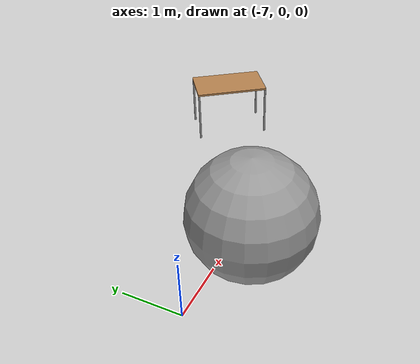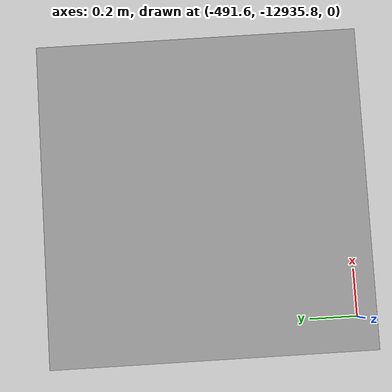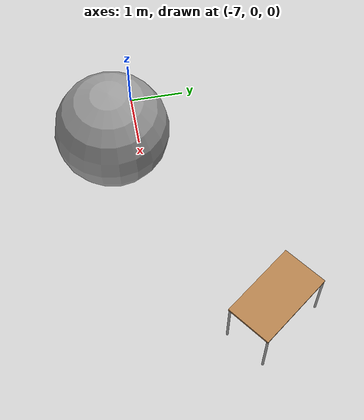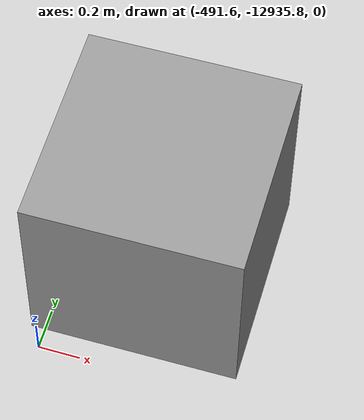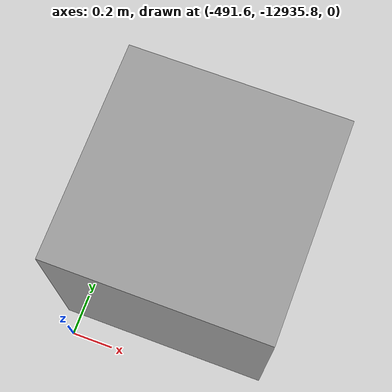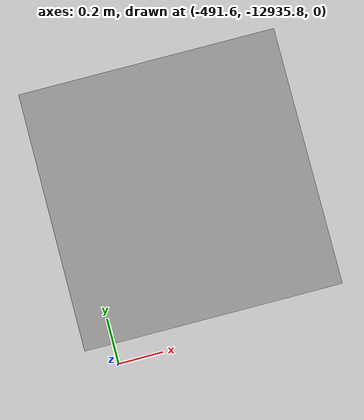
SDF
<sdf version="1.6">
 <world name="default">
  <light name="sun" type="directional">
   <pose>0 0 10 0 -0 0</pose>
   <diffuse>0.8 0.8 0.8 1</diffuse>
   <specular>0.1 0.1 0.1 1</specular>
   <attenuation>
    <range>1000</range>
    <constant>0.9</constant>
    <linear>0.01</linear>
    <quadratic>0.001</quadratic>
   </attenuation>
   <direction>-0.5 0.5 -1</direction>
  </light>
  <model name="ground_plane">
   <static>1</static>
   <link name="link">
    <collision name="collision">
     <geometry><plane><normal>0 0 1</normal><size>100 100</size></plane></geometry>
     <surface><friction><ode><mu>100</mu><mu2>50</mu2></ode></friction></surface>
    </collision>
    <visual name="visual">
     <cast_shadows>0</cast_shadows>
     <geometry><plane><normal>0 0 1</normal><size>100 100</size></plane></geometry>
     <material>
      <script><uri>file://media/materials/scripts/gazebo.material</uri><name>Gazebo/Grey</name></script>
     </material>
    </visual>
   </link>
  </model>
  <gravity>0 0 -9.8</gravity>
  <magnetic_field>6e-06 2.3e-05 -4.2e-05</magnetic_field>
  <atmosphere type="adiabatic"/>
  <physics name="default_physics" default="0" type="ode">
   <max_step_size>0.001</max_step_size>
   <real_time_factor>1</real_time_factor>
   <real_time_update_rate>1000</real_time_update_rate>
  </physics>
  <scene><ambient>0.4 0.4 0.4 1</ambient><background>0.7 0.7 0.7 1</background><shadows>1</shadows></scene>
  <spherical_coordinates>
   <surface_model>EARTH_WGS84</surface_model>
   <latitude_deg>0</latitude_deg>
   <longitude_deg>0</longitude_deg>
   <elevation>0</elevation>
   <heading_deg>0</heading_deg>
  </spherical_coordinates>
  <model name="unit_sphere_0">
   <pose>-5.66738 -0.478237 1.0067 0 -0 0</pose>
   <link name="link">
    <inertial>
     <mass>1</mass>
     <inertia><ixx>0.1</ixx><ixy>0</ixy><ixz>0</ixz><iyy>0.1</iyy><iyz>0</iyz><izz>0.1</izz></inertia>
    </inertial>
    <collision name="collision"><geometry><sphere><radius>1.0067</radius></sphere></geometry></collision>
    <visual name="visual">
     <geometry><sphere><radius>1.0067</radius></sphere></geometry>
     <material>
      <script><name>Gazebo/Grey</name><uri>file://media/materials/scripts/gazebo.material</uri></script>
     </material>
    </visual>
   </link>
  </model>
  <model name="unit_box_0">
   <pose>-491.168 -12935.2 0.499995 0 -1e-05 0</pose>
   <link name="link">
    <inertial>
     <mass>1</mass>
     <inertia>
      <ixx>0.166667</ixx>
      <ixy>0</ixy>
      <ixz>0</ixz>
      <iyy>0.166667</iyy>
      <iyz>0</iyz>
      <izz>0.166667</izz>
     </inertia>
    </inertial>
    <collision name="collision"><geometry><box><size>1 1 1</size></box></geometry></collision>
    <visual name="visual">
     <geometry><box><size>1 1 1</size></box></geometry>
     <material>
      <script><name>Gazebo/Grey</name><uri>file://media/materials/scripts/gazebo.material</uri></script>
     </material>
    </visual>
   </link>
  </model>
  <model name="table">
   <static>0</static>
   <link name="link">
    <collision name="surface">
     <pose>0 0 1 0 -0 0</pose>
     <geometry><box><size>1.5 0.8 0.03</size></box></geometry>
     <surface><friction><ode><mu>0.6</mu><mu2>0.6</mu2></ode></friction></surface>
    </collision>
    <visual name="visual1">
     <pose>0 0 1 0 -0 0</pose>
     <geometry><box><size>1.4 0.8 0.04</size></box></geometry>
     <material>
      <script><uri>file://media/materials/scripts/gazebo.material</uri><name>Gazebo/Wood</name></script>
     </material>
    </visual>
    <collision name="front_left_leg">
     <pose>0.68 0.38 0.5 0 -0 0</pose>
     <geometry><cylinder><radius>0.02</radius><length>1</length></cylinder></geometry>
    </collision>
    <visual name="front_left_leg">
     <pose>0.68 0.38 0.5 0 -0 0</pose>
     <geometry><cylinder><radius>0.02</radius><length>1</length></cylinder></geometry>
     <material>
      <script><uri>file://media/materials/scripts/gazebo.material</uri><name>Gazebo/Grey</name></script>
     </material>
    </visual>
    <collision name="front_right_leg">
     <pose>0.68 -0.38 0.5 0 -0 0</pose>
     <geometry><cylinder><radius>0.02</radius><length>1</length></cylinder></geometry>
    </collision>
    <visual name="front_right_leg">
     <pose>0.68 -0.38 0.5 0 -0 0</pose>
     <geometry><cylinder><radius>0.02</radius><length>1</length></cylinder></geometry>
     <material>
      <script><uri>file://media/materials/scripts/gazebo.material</uri><name>Gazebo/Grey</name></script>
     </material>
    </visual>
    <collision name="back_right_leg">
     <pose>-0.68 -0.38 0.5 0 -0 0</pose>
     <geometry><cylinder><radius>0.02</radius><length>1</length></cylinder></geometry>
    </collision>
    <visual name="back_right_leg">
     <pose>-0.68 -0.38 0.5 0 -0 0</pose>
     <geometry><cylinder><radius>0.02</radius><length>1</length></cylinder></geometry>
     <material>
      <script><uri>file://media/materials/scripts/gazebo.material</uri><name>Gazebo/Grey</name></script>
     </material>
    </visual>
    <collision name="back_left_leg">
     <pose>-0.68 0.38 0.5 0 -0 0</pose>
     <geometry><cylinder><radius>0.02</radius><length>1</length></cylinder></geometry>
    </collision>
    <visual name="back_left_leg">
     <pose>-0.68 0.38 0.5 0 -0 0</pose>
     <geometry><cylinder><radius>0.02</radius><length>1</length></cylinder></geometry>
     <material>
      <script><uri>file://media/materials/scripts/gazebo.material</uri><name>Gazebo/Grey</name></script>
     </material>
    </visual>
    <inertial>
     <inertia><ixx>1</ixx><ixy>0</ixy><ixz>0</ixz><iyy>1</iyy><iyz>0</iyz><izz>1</izz></inertia>
     <mass>1</mass>
    </inertial>
   </link>
   <pose>-2.06791 1.60943 -1e-06 0 0 -0.926771</pose>
  </model>
 </world>
</sdf>
